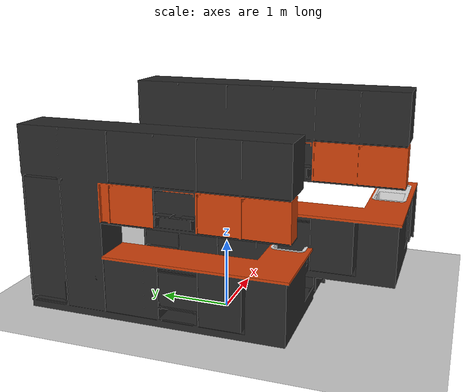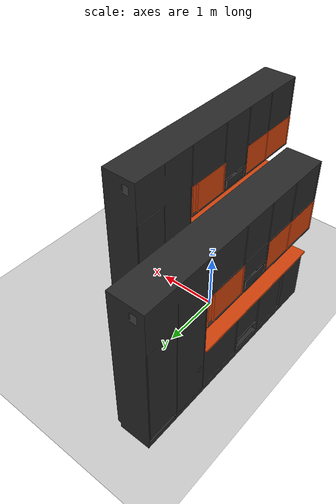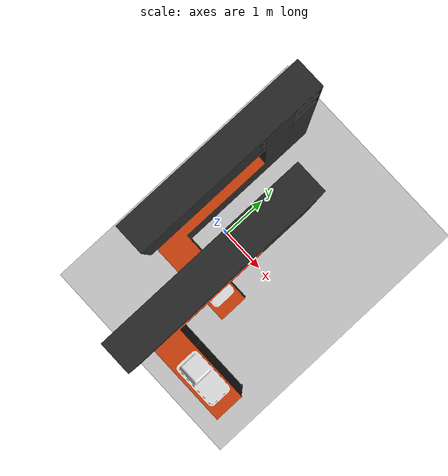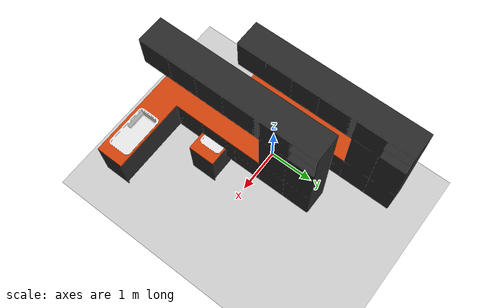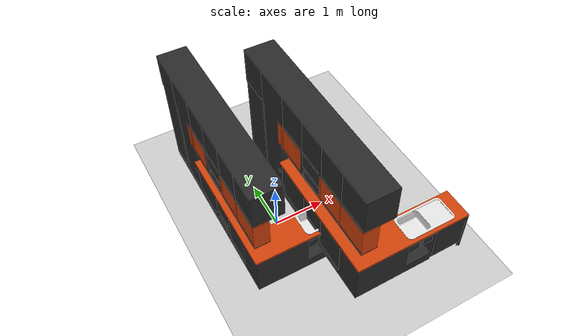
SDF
<sdf version="1.7">
 <world name="default">
  <light name="sun" type="directional">
   <pose>0 0 10 0 -0 0</pose>
   <diffuse>0.8 0.8 0.8 1</diffuse>
   <specular>0.2 0.2 0.2 1</specular>
   <attenuation>
    <range>1000</range>
    <constant>0.9</constant>
    <linear>0.01</linear>
    <quadratic>0.001</quadratic>
   </attenuation>
   <direction>-0.5 0.1 -0.9</direction>
   <spot><inner_angle>0</inner_angle><outer_angle>0</outer_angle><falloff>0</falloff></spot>
  </light>
  <model name="ground_plane">
   <static>1</static>
   <link name="link">
    <collision name="collision">
     <geometry><plane><normal>0 0 1</normal><size>100 100</size></plane></geometry>
     <surface>
      <contact><collide_bitmask>65535</collide_bitmask></contact>
      <friction><ode><mu>100</mu><mu2>50</mu2></ode></friction>
     </surface>
    </collision>
    <visual name="visual">
     <cast_shadows>0</cast_shadows>
     <geometry><plane><normal>0 0 1</normal><size>100 100</size></plane></geometry>
     <material>
      <script><uri>file://media/materials/scripts/gazebo.material</uri><name>Gazebo/Grey</name></script>
     </material>
    </visual>
   </link>
  </model>
  <gravity>0 0 -9.8</gravity>
  <magnetic_field>6e-06 2.3e-05 -4.2e-05</magnetic_field>
  <atmosphere type="adiabatic"/>
  <physics type="ode">
   <max_step_size>0.001</max_step_size>
   <real_time_factor>1</real_time_factor>
   <real_time_update_rate>1000</real_time_update_rate>
  </physics>
  <scene><ambient>0.4 0.4 0.4 1</ambient><background>0.7 0.7 0.7 1</background><shadows>1</shadows></scene>
  <audio><device>default</device></audio>
  <spherical_coordinates>
   <surface_model>EARTH_WGS84</surface_model>
   <latitude_deg>0</latitude_deg>
   <longitude_deg>0</longitude_deg>
   <elevation>0</elevation>
   <heading_deg>0</heading_deg>
  </spherical_coordinates>
  <model name="Kitchen">
   <pose>1.28454 -1.15712 0.5 0 -0 0</pose>
   <static>1</static>
   <link name="link">
    <collision name="collision">
     <geometry><mesh><uri>model://kitchen/meshes/kitchen.dae</uri><scale>1 1 1</scale></mesh></geometry>
    </collision>
    <visual name="visual">
     <geometry><mesh><uri>model://kitchen/meshes/kitchen.dae</uri><scale>1 1 1</scale></mesh></geometry>
    </visual>
   </link>
  </model>
  <model name="Kitchen_0">
   <pose>0.048516 0.056535 0.006834 0 -0 0</pose>
   <static>1</static>
   <link name="link">
    <collision name="collision">
     <geometry><mesh><uri>model://kitchen/meshes/kitchen.dae</uri><scale>1 1 1</scale></mesh></geometry>
    </collision>
    <visual name="visual">
     <geometry><mesh><uri>model://kitchen/meshes/kitchen.dae</uri><scale>1 1 1</scale></mesh></geometry>
    </visual>
   </link>
  </model>
  <light name="user_point_light_0" type="point">
   <pose>2.99292 4.57105 1 0 -0 0</pose>
   <diffuse>0.5 0.5 0.5 1</diffuse>
   <specular>0.1 0.1 0.1 1</specular>
   <attenuation>
    <range>20</range>
    <constant>0.5</constant>
    <linear>0.01</linear>
    <quadratic>0.001</quadratic>
   </attenuation>
   <cast_shadows>0</cast_shadows>
   <direction>0 0 -1</direction>
  </light>
 </world>
</sdf>
